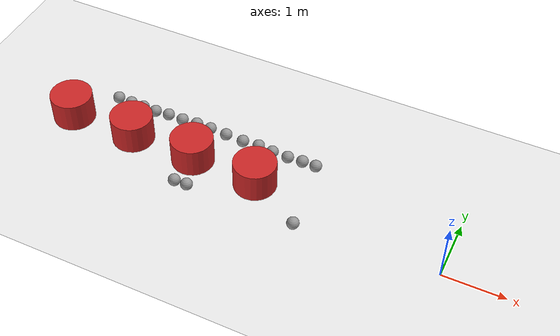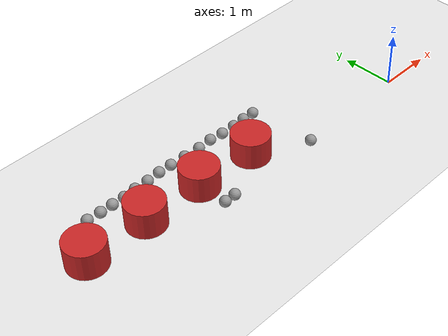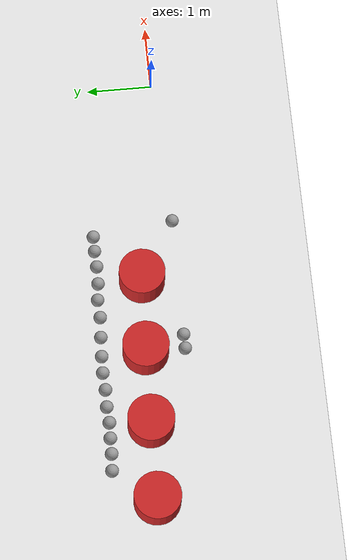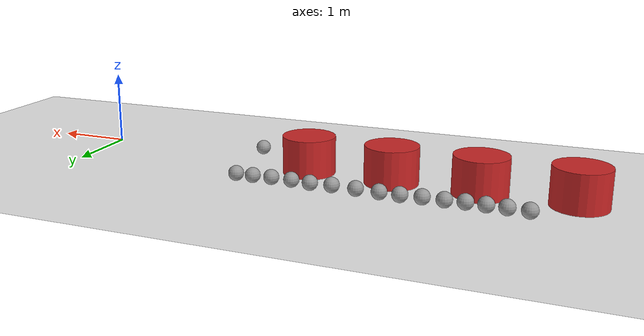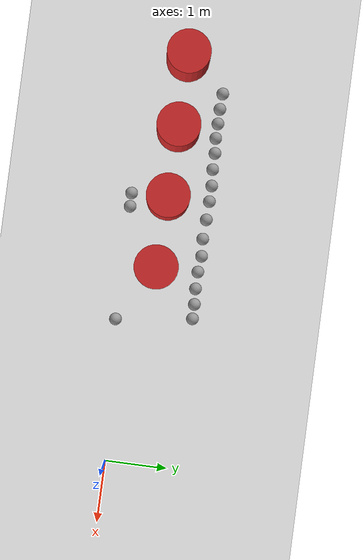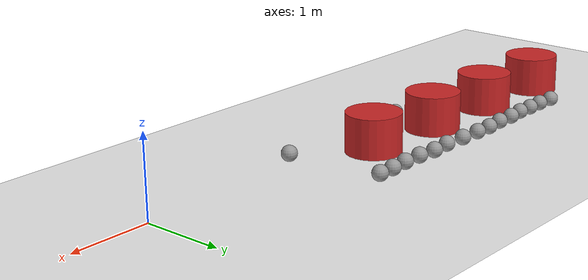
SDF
<sdf version="1.7">
 <world name="default">
  <model name="ground_plane">
   <static>1</static>
   <link name="link">
    <collision name="collision">
     <geometry><plane><normal>0 0 1</normal><size>100 100</size></plane></geometry>
     <surface>
      <contact><collide_bitmask>65535</collide_bitmask></contact>
      <friction><ode><mu>100</mu><mu2>50</mu2></ode></friction>
     </surface>
    </collision>
    <visual name="visual">
     <cast_shadows>0</cast_shadows>
     <geometry><plane><normal>0 0 1</normal><size>100 100</size></plane></geometry>
     <material>
      <script><uri>file://media/materials/scripts/gazebo.material</uri><name>Gazebo/White</name></script>
     </material>
    </visual>
   </link>
  </model>
  <model name="sphere_43">
   <link name="link_0">
    <inertial>
     <mass>1</mass>
     <inertia><ixx>0.1</ixx><ixy>0</ixy><ixz>0</ixz><iyy>0.1</iyy><iyz>0</iyz><izz>0.1</izz></inertia>
    </inertial>
    <visual name="visual">
     <geometry><sphere><radius>0.1</radius></sphere></geometry>
     <material>
      <lighting>1</lighting>
      <script><uri>file://media/materials/scripts/gazebo.material</uri><name>Gazebo/Grey</name></script>
      <shader type="pixel"><normal_map>__default__</normal_map></shader>
      <ambient>0.3 0.3 0.3 1</ambient>
      <diffuse>0.7 0.7 0.7 1</diffuse>
      <specular>0.01 0.01 0.01 1</specular>
      <emissive>0 0 0 1</emissive>
     </material>
    </visual>
    <collision name="collision">
     <geometry><sphere><radius>0.1</radius></sphere></geometry>
     <surface>
      <friction>
       <ode><mu>1</mu><mu2>1</mu2><fdir1>0 0 0</fdir1><slip1>0</slip1><slip2>0</slip2></ode>
       <torsional>
        <coefficient>1</coefficient>
        <patch_radius>0</patch_radius>
        <surface_radius>0</surface_radius>
        <use_patch_radius>1</use_patch_radius>
        <ode><slip>0</slip></ode>
       </torsional>
      </friction>
      <bounce><restitution_coefficient>0</restitution_coefficient><threshold>1e+06</threshold></bounce>
      <contact>
       <collide_without_contact>0</collide_without_contact>
       <collide_without_contact_bitmask>1</collide_without_contact_bitmask>
       <collide_bitmask>1</collide_bitmask>
       <ode>
        <soft_cfm>0</soft_cfm>
        <soft_erp>0.2</soft_erp>
        <kp>1e+13</kp>
        <kd>1</kd>
        <max_vel>0.01</max_vel>
        <min_depth>0</min_depth>
       </ode>
       <bullet>
        <split_impulse>1</split_impulse>
        <split_impulse_penetration_threshold>-0.01</split_impulse_penetration_threshold>
        <soft_cfm>0</soft_cfm>
        <soft_erp>0.2</soft_erp>
        <kp>1e+13</kp>
        <kd>1</kd>
       </bullet>
      </contact>
     </surface>
    </collision>
   </link>
   <static>0</static>
   <pose>-2.45724 1.10583 0.1 0 -0 0</pose>
  </model>
  <model name="sphere_44">
   <link name="link_0">
    <inertial>
     <mass>1</mass>
     <inertia><ixx>0.1</ixx><ixy>0</ixy><ixz>0</ixz><iyy>0.1</iyy><iyz>0</iyz><izz>0.1</izz></inertia>
    </inertial>
    <visual name="visual">
     <geometry><sphere><radius>0.1</radius></sphere></geometry>
     <material>
      <lighting>1</lighting>
      <script><uri>file://media/materials/scripts/gazebo.material</uri><name>Gazebo/Grey</name></script>
      <shader type="pixel"><normal_map>__default__</normal_map></shader>
      <ambient>0.3 0.3 0.3 1</ambient>
      <diffuse>0.7 0.7 0.7 1</diffuse>
      <specular>0.01 0.01 0.01 1</specular>
      <emissive>0 0 0 1</emissive>
     </material>
    </visual>
    <collision name="collision">
     <geometry><sphere><radius>0.1</radius></sphere></geometry>
     <surface>
      <friction>
       <ode><mu>1</mu><mu2>1</mu2><fdir1>0 0 0</fdir1><slip1>0</slip1><slip2>0</slip2></ode>
       <torsional>
        <coefficient>1</coefficient>
        <patch_radius>0</patch_radius>
        <surface_radius>0</surface_radius>
        <use_patch_radius>1</use_patch_radius>
        <ode><slip>0</slip></ode>
       </torsional>
      </friction>
      <bounce><restitution_coefficient>0</restitution_coefficient><threshold>1e+06</threshold></bounce>
      <contact>
       <collide_without_contact>0</collide_without_contact>
       <collide_without_contact_bitmask>1</collide_without_contact_bitmask>
       <collide_bitmask>1</collide_bitmask>
       <ode>
        <soft_cfm>0</soft_cfm>
        <soft_erp>0.2</soft_erp>
        <kp>1e+13</kp>
        <kd>1</kd>
        <max_vel>0.01</max_vel>
        <min_depth>0</min_depth>
       </ode>
       <bullet>
        <split_impulse>1</split_impulse>
        <split_impulse_penetration_threshold>-0.01</split_impulse_penetration_threshold>
        <soft_cfm>0</soft_cfm>
        <soft_erp>0.2</soft_erp>
        <kp>1e+13</kp>
        <kd>1</kd>
       </bullet>
      </contact>
     </surface>
    </collision>
   </link>
   <static>0</static>
   <pose>-2.69051 1.10585 0.1 0 -0 0</pose>
  </model>
  <model name="sphere_45">
   <link name="link_0">
    <inertial>
     <mass>1</mass>
     <inertia><ixx>0.1</ixx><ixy>0</ixy><ixz>0</ixz><iyy>0.1</iyy><iyz>0</iyz><izz>0.1</izz></inertia>
    </inertial>
    <visual name="visual">
     <geometry><sphere><radius>0.1</radius></sphere></geometry>
     <material>
      <lighting>1</lighting>
      <script><uri>file://media/materials/scripts/gazebo.material</uri><name>Gazebo/Grey</name></script>
      <shader type="pixel"><normal_map>__default__</normal_map></shader>
      <ambient>0.3 0.3 0.3 1</ambient>
      <diffuse>0.7 0.7 0.7 1</diffuse>
      <specular>0.01 0.01 0.01 1</specular>
      <emissive>0 0 0 1</emissive>
     </material>
    </visual>
    <collision name="collision">
     <geometry><sphere><radius>0.1</radius></sphere></geometry>
     <surface>
      <friction>
       <ode><mu>1</mu><mu2>1</mu2><fdir1>0 0 0</fdir1><slip1>0</slip1><slip2>0</slip2></ode>
       <torsional>
        <coefficient>1</coefficient>
        <patch_radius>0</patch_radius>
        <surface_radius>0</surface_radius>
        <use_patch_radius>1</use_patch_radius>
        <ode><slip>0</slip></ode>
       </torsional>
      </friction>
      <bounce><restitution_coefficient>0</restitution_coefficient><threshold>1e+06</threshold></bounce>
      <contact>
       <collide_without_contact>0</collide_without_contact>
       <collide_without_contact_bitmask>1</collide_without_contact_bitmask>
       <collide_bitmask>1</collide_bitmask>
       <ode>
        <soft_cfm>0</soft_cfm>
        <soft_erp>0.2</soft_erp>
        <kp>1e+13</kp>
        <kd>1</kd>
        <max_vel>0.01</max_vel>
        <min_depth>0</min_depth>
       </ode>
       <bullet>
        <split_impulse>1</split_impulse>
        <split_impulse_penetration_threshold>-0.01</split_impulse_penetration_threshold>
        <soft_cfm>0</soft_cfm>
        <soft_erp>0.2</soft_erp>
        <kp>1e+13</kp>
        <kd>1</kd>
       </bullet>
      </contact>
     </surface>
    </collision>
   </link>
   <static>0</static>
   <pose>-2.94144 1.09229 0.1 0 -0 0</pose>
  </model>
  <model name="sphere_46">
   <link name="link_0">
    <inertial>
     <mass>1</mass>
     <inertia><ixx>0.1</ixx><ixy>0</ixy><ixz>0</ixz><iyy>0.1</iyy><iyz>0</iyz><izz>0.1</izz></inertia>
    </inertial>
    <visual name="visual">
     <geometry><sphere><radius>0.1</radius></sphere></geometry>
     <material>
      <lighting>1</lighting>
      <script><uri>file://media/materials/scripts/gazebo.material</uri><name>Gazebo/Grey</name></script>
      <shader type="pixel"><normal_map>__default__</normal_map></shader>
      <ambient>0.3 0.3 0.3 1</ambient>
      <diffuse>0.7 0.7 0.7 1</diffuse>
      <specular>0.01 0.01 0.01 1</specular>
      <emissive>0 0 0 1</emissive>
     </material>
    </visual>
    <collision name="collision">
     <geometry><sphere><radius>0.1</radius></sphere></geometry>
     <surface>
      <friction>
       <ode><mu>1</mu><mu2>1</mu2><fdir1>0 0 0</fdir1><slip1>0</slip1><slip2>0</slip2></ode>
       <torsional>
        <coefficient>1</coefficient>
        <patch_radius>0</patch_radius>
        <surface_radius>0</surface_radius>
        <use_patch_radius>1</use_patch_radius>
        <ode><slip>0</slip></ode>
       </torsional>
      </friction>
      <bounce><restitution_coefficient>0</restitution_coefficient><threshold>1e+06</threshold></bounce>
      <contact>
       <collide_without_contact>0</collide_without_contact>
       <collide_without_contact_bitmask>1</collide_without_contact_bitmask>
       <collide_bitmask>1</collide_bitmask>
       <ode>
        <soft_cfm>0</soft_cfm>
        <soft_erp>0.2</soft_erp>
        <kp>1e+13</kp>
        <kd>1</kd>
        <max_vel>0.01</max_vel>
        <min_depth>0</min_depth>
       </ode>
       <bullet>
        <split_impulse>1</split_impulse>
        <split_impulse_penetration_threshold>-0.01</split_impulse_penetration_threshold>
        <soft_cfm>0</soft_cfm>
        <soft_erp>0.2</soft_erp>
        <kp>1e+13</kp>
        <kd>1</kd>
       </bullet>
      </contact>
     </surface>
    </collision>
   </link>
   <static>0</static>
   <pose>-3.21452 1.0947 0.1 0 -0 0</pose>
  </model>
  <model name="sphere_47">
   <link name="link_0">
    <inertial>
     <mass>1</mass>
     <inertia><ixx>0.1</ixx><ixy>0</ixy><ixz>0</ixz><iyy>0.1</iyy><iyz>0</iyz><izz>0.1</izz></inertia>
    </inertial>
    <visual name="visual">
     <geometry><sphere><radius>0.1</radius></sphere></geometry>
     <material>
      <lighting>1</lighting>
      <script><uri>file://media/materials/scripts/gazebo.material</uri><name>Gazebo/Grey</name></script>
      <shader type="pixel"><normal_map>__default__</normal_map></shader>
      <ambient>0.3 0.3 0.3 1</ambient>
      <diffuse>0.7 0.7 0.7 1</diffuse>
      <specular>0.01 0.01 0.01 1</specular>
      <emissive>0 0 0 1</emissive>
     </material>
    </visual>
    <collision name="collision">
     <geometry><sphere><radius>0.1</radius></sphere></geometry>
     <surface>
      <friction>
       <ode><mu>1</mu><mu2>1</mu2><fdir1>0 0 0</fdir1><slip1>0</slip1><slip2>0</slip2></ode>
       <torsional>
        <coefficient>1</coefficient>
        <patch_radius>0</patch_radius>
        <surface_radius>0</surface_radius>
        <use_patch_radius>1</use_patch_radius>
        <ode><slip>0</slip></ode>
       </torsional>
      </friction>
      <bounce><restitution_coefficient>0</restitution_coefficient><threshold>1e+06</threshold></bounce>
      <contact>
       <collide_without_contact>0</collide_without_contact>
       <collide_without_contact_bitmask>1</collide_without_contact_bitmask>
       <collide_bitmask>1</collide_bitmask>
       <ode>
        <soft_cfm>0</soft_cfm>
        <soft_erp>0.2</soft_erp>
        <kp>1e+13</kp>
        <kd>1</kd>
        <max_vel>0.01</max_vel>
        <min_depth>0</min_depth>
       </ode>
       <bullet>
        <split_impulse>1</split_impulse>
        <split_impulse_penetration_threshold>-0.01</split_impulse_penetration_threshold>
        <soft_cfm>0</soft_cfm>
        <soft_erp>0.2</soft_erp>
        <kp>1e+13</kp>
        <kd>1</kd>
       </bullet>
      </contact>
     </surface>
    </collision>
   </link>
   <static>0</static>
   <pose>-3.47308 1.12204 0.1 0 -0 0</pose>
  </model>
  <model name="sphere_48">
   <link name="link_0">
    <inertial>
     <mass>1</mass>
     <inertia><ixx>0.1</ixx><ixy>0</ixy><ixz>0</ixz><iyy>0.1</iyy><iyz>0</iyz><izz>0.1</izz></inertia>
    </inertial>
    <visual name="visual">
     <geometry><sphere><radius>0.1</radius></sphere></geometry>
     <material>
      <lighting>1</lighting>
      <script><uri>file://media/materials/scripts/gazebo.material</uri><name>Gazebo/Grey</name></script>
      <shader type="pixel"><normal_map>__default__</normal_map></shader>
      <ambient>0.3 0.3 0.3 1</ambient>
      <diffuse>0.7 0.7 0.7 1</diffuse>
      <specular>0.01 0.01 0.01 1</specular>
      <emissive>0 0 0 1</emissive>
     </material>
    </visual>
    <collision name="collision">
     <geometry><sphere><radius>0.1</radius></sphere></geometry>
     <surface>
      <friction>
       <ode><mu>1</mu><mu2>1</mu2><fdir1>0 0 0</fdir1><slip1>0</slip1><slip2>0</slip2></ode>
       <torsional>
        <coefficient>1</coefficient>
        <patch_radius>0</patch_radius>
        <surface_radius>0</surface_radius>
        <use_patch_radius>1</use_patch_radius>
        <ode><slip>0</slip></ode>
       </torsional>
      </friction>
      <bounce><restitution_coefficient>0</restitution_coefficient><threshold>1e+06</threshold></bounce>
      <contact>
       <collide_without_contact>0</collide_without_contact>
       <collide_without_contact_bitmask>1</collide_without_contact_bitmask>
       <collide_bitmask>1</collide_bitmask>
       <ode>
        <soft_cfm>0</soft_cfm>
        <soft_erp>0.2</soft_erp>
        <kp>1e+13</kp>
        <kd>1</kd>
        <max_vel>0.01</max_vel>
        <min_depth>0</min_depth>
       </ode>
       <bullet>
        <split_impulse>1</split_impulse>
        <split_impulse_penetration_threshold>-0.01</split_impulse_penetration_threshold>
        <soft_cfm>0</soft_cfm>
        <soft_erp>0.2</soft_erp>
        <kp>1e+13</kp>
        <kd>1</kd>
       </bullet>
      </contact>
     </surface>
    </collision>
   </link>
   <static>0</static>
   <pose>-3.75056 1.10457 0.1 0 -0 0</pose>
  </model>
  <model name="sphere_49">
   <link name="link_0">
    <inertial>
     <mass>1</mass>
     <inertia><ixx>0.1</ixx><ixy>0</ixy><ixz>0</ixz><iyy>0.1</iyy><iyz>0</iyz><izz>0.1</izz></inertia>
    </inertial>
    <visual name="visual">
     <geometry><sphere><radius>0.1</radius></sphere></geometry>
     <material>
      <lighting>1</lighting>
      <script><uri>file://media/materials/scripts/gazebo.material</uri><name>Gazebo/Grey</name></script>
      <shader type="pixel"><normal_map>__default__</normal_map></shader>
      <ambient>0.3 0.3 0.3 1</ambient>
      <diffuse>0.7 0.7 0.7 1</diffuse>
      <specular>0.01 0.01 0.01 1</specular>
      <emissive>0 0 0 1</emissive>
     </material>
    </visual>
    <collision name="collision">
     <geometry><sphere><radius>0.1</radius></sphere></geometry>
     <surface>
      <friction>
       <ode><mu>1</mu><mu2>1</mu2><fdir1>0 0 0</fdir1><slip1>0</slip1><slip2>0</slip2></ode>
       <torsional>
        <coefficient>1</coefficient>
        <patch_radius>0</patch_radius>
        <surface_radius>0</surface_radius>
        <use_patch_radius>1</use_patch_radius>
        <ode><slip>0</slip></ode>
       </torsional>
      </friction>
      <bounce><restitution_coefficient>0</restitution_coefficient><threshold>1e+06</threshold></bounce>
      <contact>
       <collide_without_contact>0</collide_without_contact>
       <collide_without_contact_bitmask>1</collide_without_contact_bitmask>
       <collide_bitmask>1</collide_bitmask>
       <ode>
        <soft_cfm>0</soft_cfm>
        <soft_erp>0.2</soft_erp>
        <kp>1e+13</kp>
        <kd>1</kd>
        <max_vel>0.01</max_vel>
        <min_depth>0</min_depth>
       </ode>
       <bullet>
        <split_impulse>1</split_impulse>
        <split_impulse_penetration_threshold>-0.01</split_impulse_penetration_threshold>
        <soft_cfm>0</soft_cfm>
        <soft_erp>0.2</soft_erp>
        <kp>1e+13</kp>
        <kd>1</kd>
       </bullet>
      </contact>
     </surface>
    </collision>
   </link>
   <static>0</static>
   <pose>-4.06362 1.12148 0.1 0 -0 0</pose>
  </model>
  <model name="sphere_50">
   <link name="link_0">
    <inertial>
     <mass>1</mass>
     <inertia><ixx>0.1</ixx><ixy>0</ixy><ixz>0</ixz><iyy>0.1</iyy><iyz>0</iyz><izz>0.1</izz></inertia>
    </inertial>
    <visual name="visual">
     <geometry><sphere><radius>0.1</radius></sphere></geometry>
     <material>
      <lighting>1</lighting>
      <script><uri>file://media/materials/scripts/gazebo.material</uri><name>Gazebo/Grey</name></script>
      <shader type="pixel"><normal_map>__default__</normal_map></shader>
      <ambient>0.3 0.3 0.3 1</ambient>
      <diffuse>0.7 0.7 0.7 1</diffuse>
      <specular>0.01 0.01 0.01 1</specular>
      <emissive>0 0 0 1</emissive>
     </material>
    </visual>
    <collision name="collision">
     <geometry><sphere><radius>0.1</radius></sphere></geometry>
     <surface>
      <friction>
       <ode><mu>1</mu><mu2>1</mu2><fdir1>0 0 0</fdir1><slip1>0</slip1><slip2>0</slip2></ode>
       <torsional>
        <coefficient>1</coefficient>
        <patch_radius>0</patch_radius>
        <surface_radius>0</surface_radius>
        <use_patch_radius>1</use_patch_radius>
        <ode><slip>0</slip></ode>
       </torsional>
      </friction>
      <bounce><restitution_coefficient>0</restitution_coefficient><threshold>1e+06</threshold></bounce>
      <contact>
       <collide_without_contact>0</collide_without_contact>
       <collide_without_contact_bitmask>1</collide_without_contact_bitmask>
       <collide_bitmask>1</collide_bitmask>
       <ode>
        <soft_cfm>0</soft_cfm>
        <soft_erp>0.2</soft_erp>
        <kp>1e+13</kp>
        <kd>1</kd>
        <max_vel>0.01</max_vel>
        <min_depth>0</min_depth>
       </ode>
       <bullet>
        <split_impulse>1</split_impulse>
        <split_impulse_penetration_threshold>-0.01</split_impulse_penetration_threshold>
        <soft_cfm>0</soft_cfm>
        <soft_erp>0.2</soft_erp>
        <kp>1e+13</kp>
        <kd>1</kd>
       </bullet>
      </contact>
     </surface>
    </collision>
   </link>
   <static>0</static>
   <pose>-4.3617 1.13358 0.1 0 -0 0</pose>
  </model>
  <model name="sphere_51">
   <link name="link_0">
    <inertial>
     <mass>1</mass>
     <inertia><ixx>0.1</ixx><ixy>0</ixy><ixz>0</ixz><iyy>0.1</iyy><iyz>0</iyz><izz>0.1</izz></inertia>
    </inertial>
    <visual name="visual">
     <geometry><sphere><radius>0.1</radius></sphere></geometry>
     <material>
      <lighting>1</lighting>
      <script><uri>file://media/materials/scripts/gazebo.material</uri><name>Gazebo/Grey</name></script>
      <shader type="pixel"><normal_map>__default__</normal_map></shader>
      <ambient>0.3 0.3 0.3 1</ambient>
      <diffuse>0.7 0.7 0.7 1</diffuse>
      <specular>0.01 0.01 0.01 1</specular>
      <emissive>0 0 0 1</emissive>
     </material>
    </visual>
    <collision name="collision">
     <geometry><sphere><radius>0.1</radius></sphere></geometry>
     <surface>
      <friction>
       <ode><mu>1</mu><mu2>1</mu2><fdir1>0 0 0</fdir1><slip1>0</slip1><slip2>0</slip2></ode>
       <torsional>
        <coefficient>1</coefficient>
        <patch_radius>0</patch_radius>
        <surface_radius>0</surface_radius>
        <use_patch_radius>1</use_patch_radius>
        <ode><slip>0</slip></ode>
       </torsional>
      </friction>
      <bounce><restitution_coefficient>0</restitution_coefficient><threshold>1e+06</threshold></bounce>
      <contact>
       <collide_without_contact>0</collide_without_contact>
       <collide_without_contact_bitmask>1</collide_without_contact_bitmask>
       <collide_bitmask>1</collide_bitmask>
       <ode>
        <soft_cfm>0</soft_cfm>
        <soft_erp>0.2</soft_erp>
        <kp>1e+13</kp>
        <kd>1</kd>
        <max_vel>0.01</max_vel>
        <min_depth>0</min_depth>
       </ode>
       <bullet>
        <split_impulse>1</split_impulse>
        <split_impulse_penetration_threshold>-0.01</split_impulse_penetration_threshold>
        <soft_cfm>0</soft_cfm>
        <soft_erp>0.2</soft_erp>
        <kp>1e+13</kp>
        <kd>1</kd>
       </bullet>
      </contact>
     </surface>
    </collision>
   </link>
   <static>0</static>
   <pose>-4.6165 1.13826 0.1 0 -0 0</pose>
  </model>
  <model name="sphere_52">
   <link name="link_0">
    <inertial>
     <mass>1</mass>
     <inertia><ixx>0.1</ixx><ixy>0</ixy><ixz>0</ixz><iyy>0.1</iyy><iyz>0</iyz><izz>0.1</izz></inertia>
    </inertial>
    <visual name="visual">
     <geometry><sphere><radius>0.1</radius></sphere></geometry>
     <material>
      <lighting>1</lighting>
      <script><uri>file://media/materials/scripts/gazebo.material</uri><name>Gazebo/Grey</name></script>
      <shader type="pixel"><normal_map>__default__</normal_map></shader>
      <ambient>0.3 0.3 0.3 1</ambient>
      <diffuse>0.7 0.7 0.7 1</diffuse>
      <specular>0.01 0.01 0.01 1</specular>
      <emissive>0 0 0 1</emissive>
     </material>
    </visual>
    <collision name="collision">
     <geometry><sphere><radius>0.1</radius></sphere></geometry>
     <surface>
      <friction>
       <ode><mu>1</mu><mu2>1</mu2><fdir1>0 0 0</fdir1><slip1>0</slip1><slip2>0</slip2></ode>
       <torsional>
        <coefficient>1</coefficient>
        <patch_radius>0</patch_radius>
        <surface_radius>0</surface_radius>
        <use_patch_radius>1</use_patch_radius>
        <ode><slip>0</slip></ode>
       </torsional>
      </friction>
      <bounce><restitution_coefficient>0</restitution_coefficient><threshold>1e+06</threshold></bounce>
      <contact>
       <collide_without_contact>0</collide_without_contact>
       <collide_without_contact_bitmask>1</collide_without_contact_bitmask>
       <collide_bitmask>1</collide_bitmask>
       <ode>
        <soft_cfm>0</soft_cfm>
        <soft_erp>0.2</soft_erp>
        <kp>1e+13</kp>
        <kd>1</kd>
        <max_vel>0.01</max_vel>
        <min_depth>0</min_depth>
       </ode>
       <bullet>
        <split_impulse>1</split_impulse>
        <split_impulse_penetration_threshold>-0.01</split_impulse_penetration_threshold>
        <soft_cfm>0</soft_cfm>
        <soft_erp>0.2</soft_erp>
        <kp>1e+13</kp>
        <kd>1</kd>
       </bullet>
      </contact>
     </surface>
    </collision>
   </link>
   <static>0</static>
   <pose>-4.87962 1.11935 0.1 0 -0 0</pose>
  </model>
  <model name="sphere_53">
   <link name="link_0">
    <inertial>
     <mass>1</mass>
     <inertia><ixx>0.1</ixx><ixy>0</ixy><ixz>0</ixz><iyy>0.1</iyy><iyz>0</iyz><izz>0.1</izz></inertia>
    </inertial>
    <visual name="visual">
     <geometry><sphere><radius>0.1</radius></sphere></geometry>
     <material>
      <lighting>1</lighting>
      <script><uri>file://media/materials/scripts/gazebo.material</uri><name>Gazebo/Grey</name></script>
      <shader type="pixel"><normal_map>__default__</normal_map></shader>
      <ambient>0.3 0.3 0.3 1</ambient>
      <diffuse>0.7 0.7 0.7 1</diffuse>
      <specular>0.01 0.01 0.01 1</specular>
      <emissive>0 0 0 1</emissive>
     </material>
    </visual>
    <collision name="collision">
     <geometry><sphere><radius>0.1</radius></sphere></geometry>
     <surface>
      <friction>
       <ode><mu>1</mu><mu2>1</mu2><fdir1>0 0 0</fdir1><slip1>0</slip1><slip2>0</slip2></ode>
       <torsional>
        <coefficient>1</coefficient>
        <patch_radius>0</patch_radius>
        <surface_radius>0</surface_radius>
        <use_patch_radius>1</use_patch_radius>
        <ode><slip>0</slip></ode>
       </torsional>
      </friction>
      <bounce><restitution_coefficient>0</restitution_coefficient><threshold>1e+06</threshold></bounce>
      <contact>
       <collide_without_contact>0</collide_without_contact>
       <collide_without_contact_bitmask>1</collide_without_contact_bitmask>
       <collide_bitmask>1</collide_bitmask>
       <ode>
        <soft_cfm>0</soft_cfm>
        <soft_erp>0.2</soft_erp>
        <kp>1e+13</kp>
        <kd>1</kd>
        <max_vel>0.01</max_vel>
        <min_depth>0</min_depth>
       </ode>
       <bullet>
        <split_impulse>1</split_impulse>
        <split_impulse_penetration_threshold>-0.01</split_impulse_penetration_threshold>
        <soft_cfm>0</soft_cfm>
        <soft_erp>0.2</soft_erp>
        <kp>1e+13</kp>
        <kd>1</kd>
       </bullet>
      </contact>
     </surface>
    </collision>
   </link>
   <static>0</static>
   <pose>-5.14301 1.12237 0.1 0 -0 0</pose>
  </model>
  <model name="sphere_54">
   <link name="link_0">
    <inertial>
     <mass>1</mass>
     <inertia><ixx>0.1</ixx><ixy>0</ixy><ixz>0</ixz><iyy>0.1</iyy><iyz>0</iyz><izz>0.1</izz></inertia>
    </inertial>
    <visual name="visual">
     <geometry><sphere><radius>0.1</radius></sphere></geometry>
     <material>
      <lighting>1</lighting>
      <script><uri>file://media/materials/scripts/gazebo.material</uri><name>Gazebo/Grey</name></script>
      <shader type="pixel"><normal_map>__default__</normal_map></shader>
      <ambient>0.3 0.3 0.3 1</ambient>
      <diffuse>0.7 0.7 0.7 1</diffuse>
      <specular>0.01 0.01 0.01 1</specular>
      <emissive>0 0 0 1</emissive>
     </material>
    </visual>
    <collision name="collision">
     <geometry><sphere><radius>0.1</radius></sphere></geometry>
     <surface>
      <friction>
       <ode><mu>1</mu><mu2>1</mu2><fdir1>0 0 0</fdir1><slip1>0</slip1><slip2>0</slip2></ode>
       <torsional>
        <coefficient>1</coefficient>
        <patch_radius>0</patch_radius>
        <surface_radius>0</surface_radius>
        <use_patch_radius>1</use_patch_radius>
        <ode><slip>0</slip></ode>
       </torsional>
      </friction>
      <bounce><restitution_coefficient>0</restitution_coefficient><threshold>1e+06</threshold></bounce>
      <contact>
       <collide_without_contact>0</collide_without_contact>
       <collide_without_contact_bitmask>1</collide_without_contact_bitmask>
       <collide_bitmask>1</collide_bitmask>
       <ode>
        <soft_cfm>0</soft_cfm>
        <soft_erp>0.2</soft_erp>
        <kp>1e+13</kp>
        <kd>1</kd>
        <max_vel>0.01</max_vel>
        <min_depth>0</min_depth>
       </ode>
       <bullet>
        <split_impulse>1</split_impulse>
        <split_impulse_penetration_threshold>-0.01</split_impulse_penetration_threshold>
        <soft_cfm>0</soft_cfm>
        <soft_erp>0.2</soft_erp>
        <kp>1e+13</kp>
        <kd>1</kd>
       </bullet>
      </contact>
     </surface>
    </collision>
   </link>
   <static>0</static>
   <pose>-5.3842 1.10367 0.1 0 -0 0</pose>
  </model>
  <model name="sphere_55">
   <link name="link_0">
    <inertial>
     <mass>1</mass>
     <inertia><ixx>0.1</ixx><ixy>0</ixy><ixz>0</ixz><iyy>0.1</iyy><iyz>0</iyz><izz>0.1</izz></inertia>
    </inertial>
    <visual name="visual">
     <geometry><sphere><radius>0.1</radius></sphere></geometry>
     <material>
      <lighting>1</lighting>
      <script><uri>file://media/materials/scripts/gazebo.material</uri><name>Gazebo/Grey</name></script>
      <shader type="pixel"><normal_map>__default__</normal_map></shader>
      <ambient>0.3 0.3 0.3 1</ambient>
      <diffuse>0.7 0.7 0.7 1</diffuse>
      <specular>0.01 0.01 0.01 1</specular>
      <emissive>0 0 0 1</emissive>
     </material>
    </visual>
    <collision name="collision">
     <geometry><sphere><radius>0.1</radius></sphere></geometry>
     <surface>
      <friction>
       <ode><mu>1</mu><mu2>1</mu2><fdir1>0 0 0</fdir1><slip1>0</slip1><slip2>0</slip2></ode>
       <torsional>
        <coefficient>1</coefficient>
        <patch_radius>0</patch_radius>
        <surface_radius>0</surface_radius>
        <use_patch_radius>1</use_patch_radius>
        <ode><slip>0</slip></ode>
       </torsional>
      </friction>
      <bounce><restitution_coefficient>0</restitution_coefficient><threshold>1e+06</threshold></bounce>
      <contact>
       <collide_without_contact>0</collide_without_contact>
       <collide_without_contact_bitmask>1</collide_without_contact_bitmask>
       <collide_bitmask>1</collide_bitmask>
       <ode>
        <soft_cfm>0</soft_cfm>
        <soft_erp>0.2</soft_erp>
        <kp>1e+13</kp>
        <kd>1</kd>
        <max_vel>0.01</max_vel>
        <min_depth>0</min_depth>
       </ode>
       <bullet>
        <split_impulse>1</split_impulse>
        <split_impulse_penetration_threshold>-0.01</split_impulse_penetration_threshold>
        <soft_cfm>0</soft_cfm>
        <soft_erp>0.2</soft_erp>
        <kp>1e+13</kp>
        <kd>1</kd>
       </bullet>
      </contact>
     </surface>
    </collision>
   </link>
   <static>0</static>
   <pose>-5.62116 1.10885 0.1 0 -0 0</pose>
  </model>
  <model name="sphere_56">
   <link name="link_0">
    <inertial>
     <mass>1</mass>
     <inertia><ixx>0.1</ixx><ixy>0</ixy><ixz>0</ixz><iyy>0.1</iyy><iyz>0</iyz><izz>0.1</izz></inertia>
    </inertial>
    <visual name="visual">
     <geometry><sphere><radius>0.1</radius></sphere></geometry>
     <material>
      <lighting>1</lighting>
      <script><uri>file://media/materials/scripts/gazebo.material</uri><name>Gazebo/Grey</name></script>
      <shader type="pixel"><normal_map>__default__</normal_map></shader>
      <ambient>0.3 0.3 0.3 1</ambient>
      <diffuse>0.7 0.7 0.7 1</diffuse>
      <specular>0.01 0.01 0.01 1</specular>
      <emissive>0 0 0 1</emissive>
     </material>
    </visual>
    <collision name="collision">
     <geometry><sphere><radius>0.1</radius></sphere></geometry>
     <surface>
      <friction>
       <ode><mu>1</mu><mu2>1</mu2><fdir1>0 0 0</fdir1><slip1>0</slip1><slip2>0</slip2></ode>
       <torsional>
        <coefficient>1</coefficient>
        <patch_radius>0</patch_radius>
        <surface_radius>0</surface_radius>
        <use_patch_radius>1</use_patch_radius>
        <ode><slip>0</slip></ode>
       </torsional>
      </friction>
      <bounce><restitution_coefficient>0</restitution_coefficient><threshold>1e+06</threshold></bounce>
      <contact>
       <collide_without_contact>0</collide_without_contact>
       <collide_without_contact_bitmask>1</collide_without_contact_bitmask>
       <collide_bitmask>1</collide_bitmask>
       <ode>
        <soft_cfm>0</soft_cfm>
        <soft_erp>0.2</soft_erp>
        <kp>1e+13</kp>
        <kd>1</kd>
        <max_vel>0.01</max_vel>
        <min_depth>0</min_depth>
       </ode>
       <bullet>
        <split_impulse>1</split_impulse>
        <split_impulse_penetration_threshold>-0.01</split_impulse_penetration_threshold>
        <soft_cfm>0</soft_cfm>
        <soft_erp>0.2</soft_erp>
        <kp>1e+13</kp>
        <kd>1</kd>
       </bullet>
      </contact>
     </surface>
    </collision>
   </link>
   <static>0</static>
   <pose>-5.85728 1.10992 0.1 0 -0 0</pose>
  </model>
  <model name="sphere_57">
   <link name="link_0">
    <inertial>
     <mass>1</mass>
     <inertia><ixx>0.1</ixx><ixy>0</ixy><ixz>0</ixz><iyy>0.1</iyy><iyz>0</iyz><izz>0.1</izz></inertia>
    </inertial>
    <visual name="visual">
     <geometry><sphere><radius>0.1</radius></sphere></geometry>
     <material>
      <lighting>1</lighting>
      <script><uri>file://media/materials/scripts/gazebo.material</uri><name>Gazebo/Grey</name></script>
      <shader type="pixel"><normal_map>__default__</normal_map></shader>
      <ambient>0.3 0.3 0.3 1</ambient>
      <diffuse>0.7 0.7 0.7 1</diffuse>
      <specular>0.01 0.01 0.01 1</specular>
      <emissive>0 0 0 1</emissive>
     </material>
    </visual>
    <collision name="collision">
     <geometry><sphere><radius>0.1</radius></sphere></geometry>
     <surface>
      <friction>
       <ode><mu>1</mu><mu2>1</mu2><fdir1>0 0 0</fdir1><slip1>0</slip1><slip2>0</slip2></ode>
       <torsional>
        <coefficient>1</coefficient>
        <patch_radius>0</patch_radius>
        <surface_radius>0</surface_radius>
        <use_patch_radius>1</use_patch_radius>
        <ode><slip>0</slip></ode>
       </torsional>
      </friction>
      <bounce><restitution_coefficient>0</restitution_coefficient><threshold>1e+06</threshold></bounce>
      <contact>
       <collide_without_contact>0</collide_without_contact>
       <collide_without_contact_bitmask>1</collide_without_contact_bitmask>
       <collide_bitmask>1</collide_bitmask>
       <ode>
        <soft_cfm>0</soft_cfm>
        <soft_erp>0.2</soft_erp>
        <kp>1e+13</kp>
        <kd>1</kd>
        <max_vel>0.01</max_vel>
        <min_depth>0</min_depth>
       </ode>
       <bullet>
        <split_impulse>1</split_impulse>
        <split_impulse_penetration_threshold>-0.01</split_impulse_penetration_threshold>
        <soft_cfm>0</soft_cfm>
        <soft_erp>0.2</soft_erp>
        <kp>1e+13</kp>
        <kd>1</kd>
       </bullet>
      </contact>
     </surface>
    </collision>
   </link>
   <static>0</static>
   <pose>-6.10998 1.12393 0.1 0 -0 0</pose>
  </model>
  <model name="sphere_67">
   <link name="link_0">
    <inertial>
     <mass>1</mass>
     <inertia><ixx>0.1</ixx><ixy>0</ixy><ixz>0</ixz><iyy>0.1</iyy><iyz>0</iyz><izz>0.1</izz></inertia>
    </inertial>
    <visual name="visual">
     <geometry><sphere><radius>0.1</radius></sphere></geometry>
     <material>
      <lighting>1</lighting>
      <script><uri>file://media/materials/scripts/gazebo.material</uri><name>Gazebo/Grey</name></script>
      <shader type="pixel"><normal_map>__default__</normal_map></shader>
      <ambient>0.3 0.3 0.3 1</ambient>
      <diffuse>0.7 0.7 0.7 1</diffuse>
      <specular>0.01 0.01 0.01 1</specular>
      <emissive>0 0 0 1</emissive>
     </material>
    </visual>
    <collision name="collision">
     <geometry><sphere><radius>0.1</radius></sphere></geometry>
     <surface>
      <friction>
       <ode><mu>1</mu><mu2>1</mu2><fdir1>0 0 0</fdir1><slip1>0</slip1><slip2>0</slip2></ode>
       <torsional>
        <coefficient>1</coefficient>
        <patch_radius>0</patch_radius>
        <surface_radius>0</surface_radius>
        <use_patch_radius>1</use_patch_radius>
        <ode><slip>0</slip></ode>
       </torsional>
      </friction>
      <bounce><restitution_coefficient>0</restitution_coefficient><threshold>1e+06</threshold></bounce>
      <contact>
       <collide_without_contact>0</collide_without_contact>
       <collide_without_contact_bitmask>1</collide_without_contact_bitmask>
       <collide_bitmask>1</collide_bitmask>
       <ode>
        <soft_cfm>0</soft_cfm>
        <soft_erp>0.2</soft_erp>
        <kp>1e+13</kp>
        <kd>1</kd>
        <max_vel>0.01</max_vel>
        <min_depth>0</min_depth>
       </ode>
       <bullet>
        <split_impulse>1</split_impulse>
        <split_impulse_penetration_threshold>-0.01</split_impulse_penetration_threshold>
        <soft_cfm>0</soft_cfm>
        <soft_erp>0.2</soft_erp>
        <kp>1e+13</kp>
        <kd>1</kd>
       </bullet>
      </contact>
     </surface>
    </collision>
   </link>
   <static>0</static>
   <pose>-4.33793 -0.125352 0.1 0 -0 0</pose>
  </model>
  <model name="sphere_68">
   <link name="link_0">
    <inertial>
     <mass>1</mass>
     <inertia><ixx>0.1</ixx><ixy>0</ixy><ixz>0</ixz><iyy>0.1</iyy><iyz>0</iyz><izz>0.1</izz></inertia>
    </inertial>
    <visual name="visual">
     <geometry><sphere><radius>0.1</radius></sphere></geometry>
     <material>
      <lighting>1</lighting>
      <script><uri>file://media/materials/scripts/gazebo.material</uri><name>Gazebo/Grey</name></script>
      <shader type="pixel"><normal_map>__default__</normal_map></shader>
      <ambient>0.3 0.3 0.3 1</ambient>
      <diffuse>0.7 0.7 0.7 1</diffuse>
      <specular>0.01 0.01 0.01 1</specular>
      <emissive>0 0 0 1</emissive>
     </material>
    </visual>
    <collision name="collision">
     <geometry><sphere><radius>0.1</radius></sphere></geometry>
     <surface>
      <friction>
       <ode><mu>1</mu><mu2>1</mu2><fdir1>0 0 0</fdir1><slip1>0</slip1><slip2>0</slip2></ode>
       <torsional>
        <coefficient>1</coefficient>
        <patch_radius>0</patch_radius>
        <surface_radius>0</surface_radius>
        <use_patch_radius>1</use_patch_radius>
        <ode><slip>0</slip></ode>
       </torsional>
      </friction>
      <bounce><restitution_coefficient>0</restitution_coefficient><threshold>1e+06</threshold></bounce>
      <contact>
       <collide_without_contact>0</collide_without_contact>
       <collide_without_contact_bitmask>1</collide_without_contact_bitmask>
       <collide_bitmask>1</collide_bitmask>
       <ode>
        <soft_cfm>0</soft_cfm>
        <soft_erp>0.2</soft_erp>
        <kp>1e+13</kp>
        <kd>1</kd>
        <max_vel>0.01</max_vel>
        <min_depth>0</min_depth>
       </ode>
       <bullet>
        <split_impulse>1</split_impulse>
        <split_impulse_penetration_threshold>-0.01</split_impulse_penetration_threshold>
        <soft_cfm>0</soft_cfm>
        <soft_erp>0.2</soft_erp>
        <kp>1e+13</kp>
        <kd>1</kd>
       </bullet>
      </contact>
     </surface>
    </collision>
   </link>
   <static>0</static>
   <pose>-4.12208 -0.121316 0.1 0 -0 0</pose>
  </model>
  <model name="sphere_77">
   <link name="link_0">
    <inertial>
     <mass>1</mass>
     <inertia><ixx>0.1</ixx><ixy>0</ixy><ixz>0</ixz><iyy>0.1</iyy><iyz>0</iyz><izz>0.1</izz></inertia>
    </inertial>
    <visual name="visual">
     <geometry><sphere><radius>0.1</radius></sphere></geometry>
     <material>
      <lighting>1</lighting>
      <script><uri>file://media/materials/scripts/gazebo.material</uri><name>Gazebo/Grey</name></script>
      <shader type="pixel"><normal_map>__default__</normal_map></shader>
      <ambient>0.3 0.3 0.3 1</ambient>
      <diffuse>0.7 0.7 0.7 1</diffuse>
      <specular>0.01 0.01 0.01 1</specular>
      <emissive>0 0 0 1</emissive>
     </material>
    </visual>
    <collision name="collision">
     <geometry><sphere><radius>0.1</radius></sphere></geometry>
     <surface>
      <friction>
       <ode><mu>1</mu><mu2>1</mu2><fdir1>0 0 0</fdir1><slip1>0</slip1><slip2>0</slip2></ode>
       <torsional>
        <coefficient>1</coefficient>
        <patch_radius>0</patch_radius>
        <surface_radius>0</surface_radius>
        <use_patch_radius>1</use_patch_radius>
        <ode><slip>0</slip></ode>
       </torsional>
      </friction>
      <bounce><restitution_coefficient>0</restitution_coefficient><threshold>1e+06</threshold></bounce>
      <contact>
       <collide_without_contact>0</collide_without_contact>
       <collide_without_contact_bitmask>1</collide_without_contact_bitmask>
       <collide_bitmask>1</collide_bitmask>
       <ode>
        <soft_cfm>0</soft_cfm>
        <soft_erp>0.2</soft_erp>
        <kp>1e+13</kp>
        <kd>1</kd>
        <max_vel>0.01</max_vel>
        <min_depth>0</min_depth>
       </ode>
       <bullet>
        <split_impulse>1</split_impulse>
        <split_impulse_penetration_threshold>-0.01</split_impulse_penetration_threshold>
        <soft_cfm>0</soft_cfm>
        <soft_erp>0.2</soft_erp>
        <kp>1e+13</kp>
        <kd>1</kd>
       </bullet>
      </contact>
     </surface>
    </collision>
   </link>
   <static>0</static>
   <pose>-2.2971 -0.120161 0.1 -0.01247 0.036106 -0.000532</pose>
  </model>
  <model name="model8.4_0">
   <model name="model8.1_4">
    <link name="link_1">
     <inertial>
      <mass>1</mass>
      <inertia><ixx>0.145833</ixx><ixy>0</ixy><ixz>0</ixz><iyy>0.145833</iyy><iyz>0</iyz><izz>0.125</izz></inertia>
     </inertial>
     <visual name="visual">
      <geometry><cylinder><radius>0.35</radius><length>0.5</length></cylinder></geometry>
      <material>
       <lighting>1</lighting>
       <script><uri>file://media/materials/scripts/gazebo.material</uri><name>Gazebo/Red</name></script>
       <shader type="pixel"><normal_map>__default__</normal_map></shader>
       <ambient>0.808 0.361 0 1</ambient>
       <diffuse>0.7 0.7 0.7 1</diffuse>
       <specular>0.01 0.01 0.01 1</specular>
       <emissive>0 0 0 1</emissive>
      </material>
     </visual>
     <collision name="collision">
      <geometry><cylinder><radius>0.35</radius><length>0.5</length></cylinder></geometry>
      <surface>
       <friction>
        <ode><mu>1</mu><mu2>1</mu2><fdir1>0 0 0</fdir1><slip1>0</slip1><slip2>0</slip2></ode>
        <torsional>
         <coefficient>1</coefficient>
         <patch_radius>0</patch_radius>
         <surface_radius>0</surface_radius>
         <use_patch_radius>1</use_patch_radius>
         <ode><slip>0</slip></ode>
        </torsional>
       </friction>
       <bounce><restitution_coefficient>0</restitution_coefficient><threshold>1e+06</threshold></bounce>
       <contact>
        <collide_without_contact>0</collide_without_contact>
        <collide_without_contact_bitmask>1</collide_without_contact_bitmask>
        <collide_bitmask>1</collide_bitmask>
        <ode>
         <soft_cfm>0</soft_cfm>
         <soft_erp>0.2</soft_erp>
         <kp>1e+13</kp>
         <kd>1</kd>
         <max_vel>0.01</max_vel>
         <min_depth>0</min_depth>
        </ode>
        <bullet>
         <split_impulse>1</split_impulse>
         <split_impulse_penetration_threshold>-0.01</split_impulse_penetration_threshold>
         <soft_cfm>0</soft_cfm>
         <soft_erp>0.2</soft_erp>
         <kp>1e+13</kp>
         <kd>1</kd>
        </bullet>
       </contact>
      </surface>
     </collision>
    </link>
    <static>0</static>
    <pose>0 -2e-06 0 0 -0 0</pose>
   </model>
   <static>0</static>
   <pose>-3.198 0.424005 0.249991 0 -0 0</pose>
  </model>
  <model name="model8.4_1">
   <model name="model8.1_4">
    <link name="link_1">
     <inertial>
      <mass>1</mass>
      <inertia><ixx>0.145833</ixx><ixy>0</ixy><ixz>0</ixz><iyy>0.145833</iyy><iyz>0</iyz><izz>0.125</izz></inertia>
     </inertial>
     <visual name="visual">
      <geometry><cylinder><radius>0.35</radius><length>0.5</length></cylinder></geometry>
      <material>
       <lighting>1</lighting>
       <script><uri>file://media/materials/scripts/gazebo.material</uri><name>Gazebo/Red</name></script>
       <shader type="pixel"><normal_map>__default__</normal_map></shader>
       <ambient>0.808 0.361 0 1</ambient>
       <diffuse>0.7 0.7 0.7 1</diffuse>
       <specular>0.01 0.01 0.01 1</specular>
       <emissive>0 0 0 1</emissive>
      </material>
     </visual>
     <collision name="collision">
      <geometry><cylinder><radius>0.35</radius><length>0.5</length></cylinder></geometry>
      <surface>
       <friction>
        <ode><mu>1</mu><mu2>1</mu2><fdir1>0 0 0</fdir1><slip1>0</slip1><slip2>0</slip2></ode>
        <torsional>
         <coefficient>1</coefficient>
         <patch_radius>0</patch_radius>
         <surface_radius>0</surface_radius>
         <use_patch_radius>1</use_patch_radius>
         <ode><slip>0</slip></ode>
        </torsional>
       </friction>
       <bounce><restitution_coefficient>0</restitution_coefficient><threshold>1e+06</threshold></bounce>
       <contact>
        <collide_without_contact>0</collide_without_contact>
        <collide_without_contact_bitmask>1</collide_without_contact_bitmask>
        <collide_bitmask>1</collide_bitmask>
        <ode>
         <soft_cfm>0</soft_cfm>
         <soft_erp>0.2</soft_erp>
         <kp>1e+13</kp>
         <kd>1</kd>
         <max_vel>0.01</max_vel>
         <min_depth>0</min_depth>
        </ode>
        <bullet>
         <split_impulse>1</split_impulse>
         <split_impulse_penetration_threshold>-0.01</split_impulse_penetration_threshold>
         <soft_cfm>0</soft_cfm>
         <soft_erp>0.2</soft_erp>
         <kp>1e+13</kp>
         <kd>1</kd>
        </bullet>
       </contact>
      </surface>
     </collision>
    </link>
    <static>0</static>
    <pose>-0 -4e-06 0 0 -0 0</pose>
   </model>
   <static>0</static>
   <pose>-4.32997 0.467744 0.249991 0 -0 0</pose>
  </model>
  <model name="model8.3_0">
   <link name="link_1">
    <inertial>
     <mass>1</mass>
     <inertia><ixx>0.145833</ixx><ixy>0</ixy><ixz>0</ixz><iyy>0.145833</iyy><iyz>0</iyz><izz>0.125</izz></inertia>
    </inertial>
    <visual name="visual">
     <geometry><cylinder><radius>0.35</radius><length>0.5</length></cylinder></geometry>
     <material>
      <lighting>1</lighting>
      <script><uri>file://media/materials/scripts/gazebo.material</uri><name>Gazebo/Red</name></script>
      <shader type="pixel"><normal_map>__default__</normal_map></shader>
      <ambient>0 1 0 1</ambient>
      <diffuse>0.7 0.7 0.7 1</diffuse>
      <specular>0.01 0.01 0.01 1</specular>
      <emissive>0 0 0 1</emissive>
     </material>
    </visual>
    <collision name="collision">
     <geometry><cylinder><radius>0.35</radius><length>0.5</length></cylinder></geometry>
     <surface>
      <friction>
       <ode><mu>1</mu><mu2>1</mu2><fdir1>0 0 0</fdir1><slip1>0</slip1><slip2>0</slip2></ode>
       <torsional>
        <coefficient>1</coefficient>
        <patch_radius>0</patch_radius>
        <surface_radius>0</surface_radius>
        <use_patch_radius>1</use_patch_radius>
        <ode><slip>0</slip></ode>
       </torsional>
      </friction>
      <bounce><restitution_coefficient>0</restitution_coefficient><threshold>1e+06</threshold></bounce>
      <contact>
       <collide_without_contact>0</collide_without_contact>
       <collide_without_contact_bitmask>1</collide_without_contact_bitmask>
       <collide_bitmask>1</collide_bitmask>
       <ode>
        <soft_cfm>0</soft_cfm>
        <soft_erp>0.2</soft_erp>
        <kp>1e+13</kp>
        <kd>1</kd>
        <max_vel>0.01</max_vel>
        <min_depth>0</min_depth>
       </ode>
       <bullet>
        <split_impulse>1</split_impulse>
        <split_impulse_penetration_threshold>-0.01</split_impulse_penetration_threshold>
        <soft_cfm>0</soft_cfm>
        <soft_erp>0.2</soft_erp>
        <kp>1e+13</kp>
        <kd>1</kd>
       </bullet>
      </contact>
     </surface>
    </collision>
   </link>
   <static>0</static>
   <pose>-5.45086 0.489881 0.25 0 -0 0</pose>
  </model>
  <model name="model8.3_1">
   <link name="link_1">
    <inertial>
     <mass>1</mass>
     <inertia><ixx>0.145833</ixx><ixy>0</ixy><ixz>0</ixz><iyy>0.145833</iyy><iyz>0</iyz><izz>0.125</izz></inertia>
    </inertial>
    <visual name="visual">
     <geometry><cylinder><radius>0.35</radius><length>0.5</length></cylinder></geometry>
     <material>
      <lighting>1</lighting>
      <script><uri>file://media/materials/scripts/gazebo.material</uri><name>Gazebo/Red</name></script>
      <shader type="pixel"><normal_map>__default__</normal_map></shader>
      <ambient>0 1 0 1</ambient>
      <diffuse>0.7 0.7 0.7 1</diffuse>
      <specular>0.01 0.01 0.01 1</specular>
      <emissive>0 0 0 1</emissive>
     </material>
    </visual>
    <collision name="collision">
     <geometry><cylinder><radius>0.35</radius><length>0.5</length></cylinder></geometry>
     <surface>
      <friction>
       <ode><mu>1</mu><mu2>1</mu2><fdir1>0 0 0</fdir1><slip1>0</slip1><slip2>0</slip2></ode>
       <torsional>
        <coefficient>1</coefficient>
        <patch_radius>0</patch_radius>
        <surface_radius>0</surface_radius>
        <use_patch_radius>1</use_patch_radius>
        <ode><slip>0</slip></ode>
       </torsional>
      </friction>
      <bounce><restitution_coefficient>0</restitution_coefficient><threshold>1e+06</threshold></bounce>
      <contact>
       <collide_without_contact>0</collide_without_contact>
       <collide_without_contact_bitmask>1</collide_without_contact_bitmask>
       <collide_bitmask>1</collide_bitmask>
       <ode>
        <soft_cfm>0</soft_cfm>
        <soft_erp>0.2</soft_erp>
        <kp>1e+13</kp>
        <kd>1</kd>
        <max_vel>0.01</max_vel>
        <min_depth>0</min_depth>
       </ode>
       <bullet>
        <split_impulse>1</split_impulse>
        <split_impulse_penetration_threshold>-0.01</split_impulse_penetration_threshold>
        <soft_cfm>0</soft_cfm>
        <soft_erp>0.2</soft_erp>
        <kp>1e+13</kp>
        <kd>1</kd>
       </bullet>
      </contact>
     </surface>
    </collision>
   </link>
   <static>0</static>
   <pose>-6.60428 0.500796 0.249991 0 -0 0</pose>
  </model>
 </world>
</sdf>
